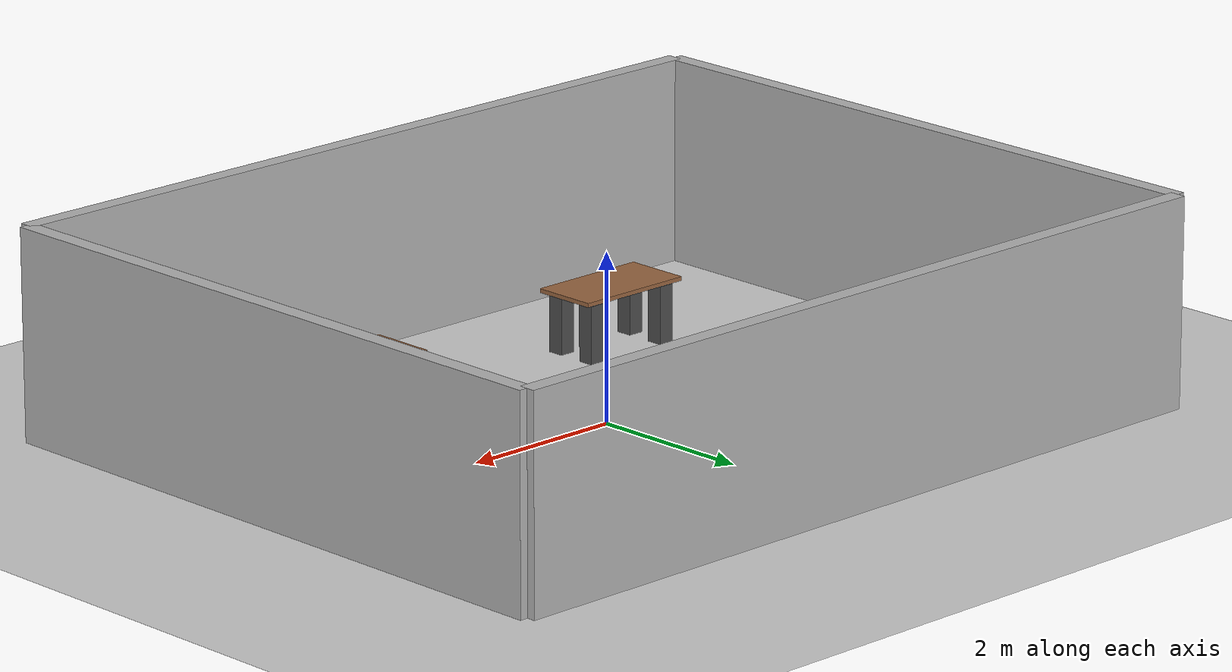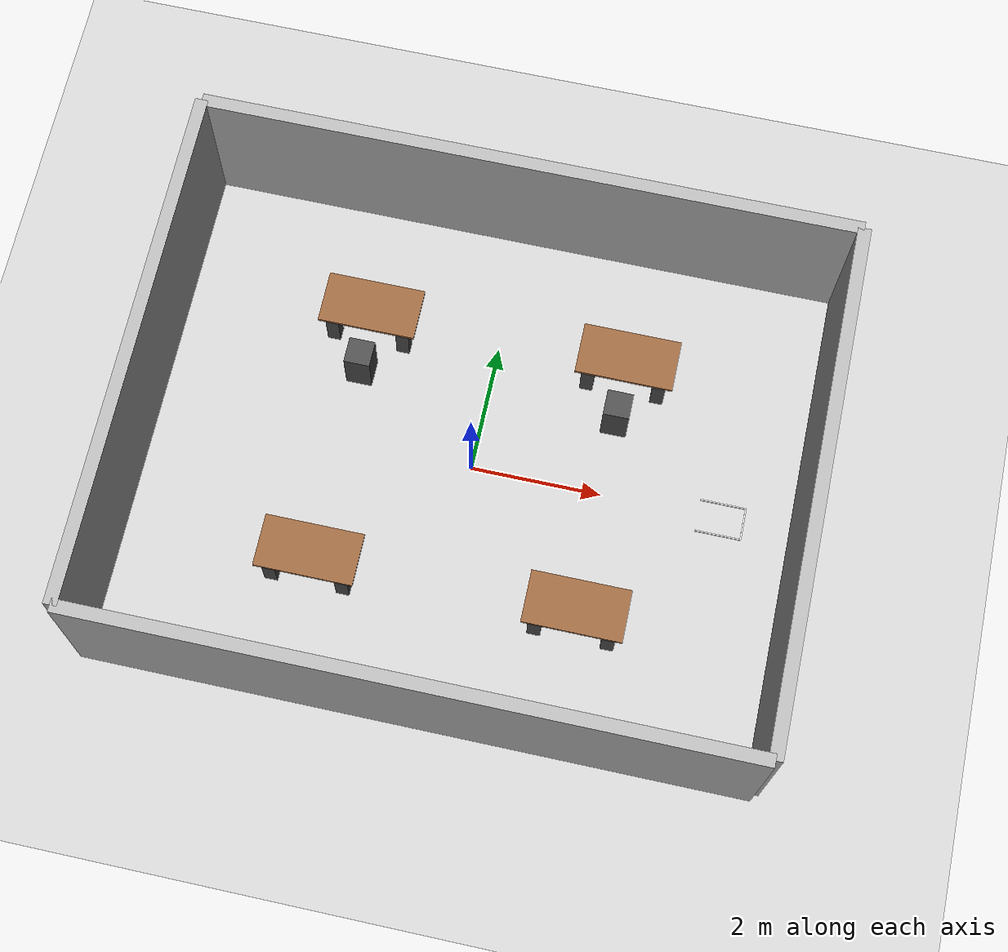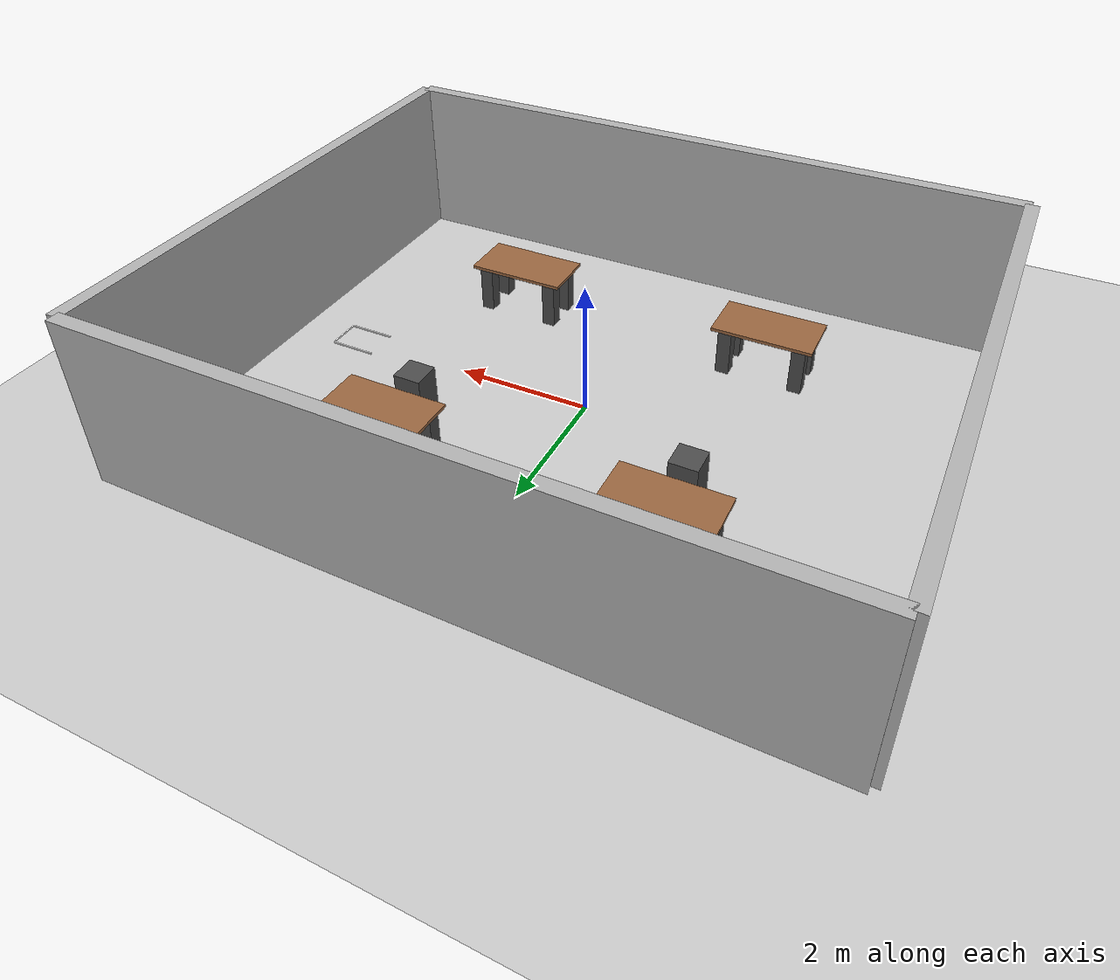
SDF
<?xml version="1.0" ?>
<sdf version="1.9">
  <world name="computer_lab">

    <!-- ================= SCENE ================= -->
    <scene>
      <ambient>0.6 0.6 0.6 1</ambient>
      <background>0.95 0.95 0.95 1</background>
    </scene>

    <!-- ================= LIGHTS ================= -->

    <!-- Sun -->
    <light name="sun" type="directional">
      <pose>0 0 10 0 0 0</pose>
      <direction>-0.5 0.1 -1</direction>
      <diffuse>0.8 0.8 0.8 1</diffuse>
      <specular>0.2 0.2 0.2 1</specular>
    </light>

    <!-- Indoor ceiling light -->
    <light name="room_light" type="point">
      <pose>0 0 6 0 0 0</pose>
      <diffuse>1 1 1 1</diffuse>
      <specular>0.2 0.2 0.2 1</specular>
      <attenuation>
        <range>20</range>
        <constant>0.9</constant>
        <linear>0.01</linear>
      </attenuation>
    </light>

    <!-- ================= GROUND ================= -->

    <model name="ground_plane">
      <static>true</static>
      <link name="link">
        <collision name="collision">
          <geometry>
            <plane>
              <normal>0 0 1</normal>
              <size>50 50</size>
            </plane>
          </geometry>
        </collision>
        <visual name="visual">
          <geometry>
            <plane>
              <normal>0 0 1</normal>
              <size>50 50</size>
            </plane>
          </geometry>
          <material>
            <ambient>0.8 0.8 0.8 1</ambient>
            <diffuse>0.8 0.8 0.8 1</diffuse>
            <specular>0.1 0.1 0.1 1</specular>
          </material>
        </visual>
      </link>
    </model>

    <!-- ================= WALLS ================= -->

    <!-- Front -->
    <model name="wall_front">
      <static>true</static>
      <pose>0 4 1.25 0 0 0</pose>
      <link name="link">
        <collision name="collision">
          <geometry><box><size>10 0.2 2.5</size></box></geometry>
        </collision>
        <visual name="visual">
          <geometry><box><size>10 0.2 2.5</size></box></geometry>
          <material><diffuse>0.7 0.7 0.7 1</diffuse></material>
        </visual>
      </link>
    </model>

    <!-- Back -->
    <model name="wall_back">
      <static>true</static>
      <pose>0 -4 1.25 0 0 0</pose>
      <link name="link">
        <collision name="collision">
          <geometry><box><size>10 0.2 2.5</size></box></geometry>
        </collision>
        <visual name="visual">
          <geometry><box><size>10 0.2 2.5</size></box></geometry>
          <material><diffuse>0.7 0.7 0.7 1</diffuse></material>
        </visual>
      </link>
    </model>

    <!-- Left -->
    <model name="wall_left">
      <static>true</static>
      <pose>-5 0 1.25 0 0 0</pose>
      <link name="link">
        <collision name="collision">
          <geometry><box><size>0.2 8 2.5</size></box></geometry>
        </collision>
        <visual name="visual">
          <geometry><box><size>0.2 8 2.5</size></box></geometry>
          <material><diffuse>0.7 0.7 0.7 1</diffuse></material>
        </visual>
      </link>
    </model>

    <!-- Right -->
    <model name="wall_right">
      <static>true</static>
      <pose>5 0 1.25 0 0 0</pose>
      <link name="link">
        <collision name="collision">
          <geometry><box><size>0.2 8 2.5</size></box></geometry>
        </collision>
        <visual name="visual">
          <geometry><box><size>0.2 8 2.5</size></box></geometry>
          <material><diffuse>0.7 0.7 0.7 1</diffuse></material>
        </visual>
      </link>
    </model>

    <!-- ================= TABLES ================= -->

    <model name="table_1">
      <static>true</static>
      <pose>-2 2 0 0 0 0</pose>

      <link name="link">

        <!-- ================= TABLE TOP ================= -->
        <collision name="top_collision">
          <!-- Top thickness = 0.05 m, height = 0.75 m -->
          <pose>0 0 0.75 0 0 0</pose>
          <geometry>
            <box><size>1.5 0.8 0.05</size></box>
          </geometry>
        </collision>

        <visual name="top_visual">
          <pose>0 0 0.75 0 0 0</pose>
          <geometry>
            <box><size>1.5 0.8 0.05</size></box>
          </geometry>
          <material>
            <diffuse>0.6 0.4 0.25 1</diffuse>
          </material>
        </visual>

        <!-- ================= TABLE LEGS ================= -->
        <!-- Leg height: 0.7 m (touches ground) -->
        <!-- Leg thickness: 5 cm -->

        <!-- Front-left -->
        <collision name="leg_fl_col">
          <pose>0.55 0.25 0.35 0 0 0</pose>
          <geometry>
            <box><size>0.20 0.20 0.7</size></box>
          </geometry>
        </collision>
        <visual name="leg_fl_vis">
          <pose>0.55 0.25 0.35 0 0 0</pose>
          <geometry>
            <box><size>0.20 0.20 0.7</size></box>
          </geometry>
          <material>
            <diffuse>0.3 0.3 0.3 1</diffuse>
          </material>
        </visual>

        <!-- Front-right -->
        <collision name="leg_fr_col">
          <pose>0.55 -0.25 0.35 0 0 0</pose>
          <geometry>
            <box><size>0.20 0.20 0.7</size></box>
          </geometry>
        </collision>
        <visual name="leg_fr_vis">
          <pose>0.55 -0.25 0.35 0 0 0</pose>
          <geometry>
            <box><size>0.20 0.20 0.7</size></box>
          </geometry>
          <material>
            <diffuse>0.3 0.3 0.3 1</diffuse>
          </material>
        </visual>

        <!-- Back-left -->
        <collision name="leg_bl_col">
          <pose>-0.55 0.25 0.35 0 0 0</pose>
          <geometry>
            <box><size>0.20 0.20 0.7</size></box>
          </geometry>
        </collision>
        <visual name="leg_bl_vis">
          <pose>-0.55 0.25 0.35 0 0 0</pose>
          <geometry>
            <box><size>0.20 0.20 0.7</size></box>
          </geometry>
          <material>
            <diffuse>0.3 0.3 0.3 1</diffuse>
          </material>
        </visual>

        <!-- Back-right -->
        <collision name="leg_br_col">
          <pose>-0.55 -0.25 0.35 0 0 0</pose>
          <geometry>
            <box><size>0.20 0.20 0.7</size></box>
          </geometry>
        </collision>
        <visual name="leg_br_vis">
          <pose>-0.55 -0.25 0.35 0 0 0</pose>
          <geometry>
            <box><size>0.20 0.20 0.7</size></box>
          </geometry>
          <material>
            <diffuse>0.3 0.3 0.3 1</diffuse>
          </material>
        </visual>

      </link>
    </model>

        <!-- ================= TABLES ================= -->

    <model name="table_2">
      <static>true</static>
      <pose>2 2 0 0 0 0</pose>

      <link name="link">

        <!-- ================= TABLE TOP ================= -->
        <collision name="top_collision">
          <!-- Top thickness = 0.05 m, height = 0.75 m -->
          <pose>0 0 0.75 0 0 0</pose>
          <geometry>
            <box><size>1.5 0.8 0.05</size></box>
          </geometry>
        </collision>

        <visual name="top_visual">
          <pose>0 0 0.75 0 0 0</pose>
          <geometry>
            <box><size>1.5 0.8 0.05</size></box>
          </geometry>
          <material>
            <diffuse>0.6 0.4 0.25 1</diffuse>
          </material>
        </visual>

        <!-- ================= TABLE LEGS ================= -->
        <!-- Leg height: 0.7 m (touches ground) -->
        <!-- Leg thickness: 5 cm -->

        <!-- Front-left -->
        <collision name="leg_fl_col">
          <pose>0.55 0.25 0.35 0 0 0</pose>
          <geometry>
            <box><size>0.20 0.20 0.7</size></box>
          </geometry>
        </collision>
        <visual name="leg_fl_vis">
          <pose>0.55 0.25 0.35 0 0 0</pose>
          <geometry>
            <box><size>0.20 0.20 0.7</size></box>
          </geometry>
          <material>
            <diffuse>0.3 0.3 0.3 1</diffuse>
          </material>
        </visual>

        <!-- Front-right -->
        <collision name="leg_fr_col">
          <pose>0.55 -0.25 0.35 0 0 0</pose>
          <geometry>
            <box><size>0.20 0.20 0.7</size></box>
          </geometry>
        </collision>
        <visual name="leg_fr_vis">
          <pose>0.55 -0.25 0.35 0 0 0</pose>
          <geometry>
            <box><size>0.20 0.20 0.7</size></box>
          </geometry>
          <material>
            <diffuse>0.3 0.3 0.3 1</diffuse>
          </material>
        </visual>

        <!-- Back-left -->
        <collision name="leg_bl_col">
          <pose>-0.55 0.25 0.35 0 0 0</pose>
          <geometry>
            <box><size>0.20 0.20 0.7</size></box>
          </geometry>
        </collision>
        <visual name="leg_bl_vis">
          <pose>-0.55 0.25 0.35 0 0 0</pose>
          <geometry>
            <box><size>0.20 0.20 0.7</size></box>
          </geometry>
          <material>
            <diffuse>0.3 0.3 0.3 1</diffuse>
          </material>
        </visual>

        <!-- Back-right -->
        <collision name="leg_br_col">
          <pose>-0.55 -0.25 0.35 0 0 0</pose>
          <geometry>
            <box><size>0.20 0.20 0.7</size></box>
          </geometry>
        </collision>
        <visual name="leg_br_vis">
          <pose>-0.55 -0.25 0.35 0 0 0</pose>
          <geometry>
            <box><size>0.20 0.20 0.7</size></box>
          </geometry>
          <material>
            <diffuse>0.3 0.3 0.3 1</diffuse>
          </material>
        </visual>

      </link>
    </model>

        <!-- ================= TABLES ================= -->

    <model name="table_3">
      <static>true</static>
      <pose>-2 -2 0 0 0 0</pose>

      <link name="link">

        <!-- ================= TABLE TOP ================= -->
        <collision name="top_collision">
          <!-- Top thickness = 0.05 m, height = 0.75 m -->
          <pose>0 0 0.75 0 0 0</pose>
          <geometry>
            <box><size>1.5 0.8 0.05</size></box>
          </geometry>
        </collision>

        <visual name="top_visual">
          <pose>0 0 0.75 0 0 0</pose>
          <geometry>
            <box><size>1.5 0.8 0.05</size></box>
          </geometry>
          <material>
            <diffuse>0.6 0.4 0.25 1</diffuse>
          </material>
        </visual>

        <!-- ================= TABLE LEGS ================= -->
        <!-- Leg height: 0.7 m (touches ground) -->
        <!-- Leg thickness: 5 cm -->

        <!-- Front-left -->
        <collision name="leg_fl_col">
          <pose>0.55 0.25 0.35 0 0 0</pose>
          <geometry>
            <box><size>0.20 0.20 0.7</size></box>
          </geometry>
        </collision>
        <visual name="leg_fl_vis">
          <pose>0.55 0.25 0.35 0 0 0</pose>
          <geometry>
            <box><size>0.20 0.20 0.7</size></box>
          </geometry>
          <material>
            <diffuse>0.3 0.3 0.3 1</diffuse>
          </material>
        </visual>

        <!-- Front-right -->
        <collision name="leg_fr_col">
          <pose>0.55 -0.25 0.35 0 0 0</pose>
          <geometry>
            <box><size>0.20 0.20 0.7</size></box>
          </geometry>
        </collision>
        <visual name="leg_fr_vis">
          <pose>0.55 -0.25 0.35 0 0 0</pose>
          <geometry>
            <box><size>0.20 0.20 0.7</size></box>
          </geometry>
          <material>
            <diffuse>0.3 0.3 0.3 1</diffuse>
          </material>
        </visual>

        <!-- Back-left -->
        <collision name="leg_bl_col">
          <pose>-0.55 0.25 0.35 0 0 0</pose>
          <geometry>
            <box><size>0.20 0.20 0.7</size></box>
          </geometry>
        </collision>
        <visual name="leg_bl_vis">
          <pose>-0.55 0.25 0.35 0 0 0</pose>
          <geometry>
            <box><size>0.20 0.20 0.7</size></box>
          </geometry>
          <material>
            <diffuse>0.3 0.3 0.3 1</diffuse>
          </material>
        </visual>

        <!-- Back-right -->
        <collision name="leg_br_col">
          <pose>-0.55 -0.25 0.35 0 0 0</pose>
          <geometry>
            <box><size>0.20 0.20 0.7</size></box>
          </geometry>
        </collision>
        <visual name="leg_br_vis">
          <pose>-0.55 -0.25 0.35 0 0 0</pose>
          <geometry>
            <box><size>0.20 0.20 0.7</size></box>
          </geometry>
          <material>
            <diffuse>0.3 0.3 0.3 1</diffuse>
          </material>
        </visual>

      </link>
    </model>

        <!-- ================= TABLES ================= -->

    <model name="table_4">
      <static>true</static>
      <pose>2 -2 0 0 0 0</pose>

      <link name="link">

        <!-- ================= TABLE TOP ================= -->
        <collision name="top_collision">
          <!-- Top thickness = 0.05 m, height = 0.75 m -->
          <pose>0 0 0.75 0 0 0</pose>
          <geometry>
            <box><size>1.5 0.8 0.05</size></box>
          </geometry>
        </collision>

        <visual name="top_visual">
          <pose>0 0 0.75 0 0 0</pose>
          <geometry>
            <box><size>1.5 0.8 0.05</size></box>
          </geometry>
          <material>
            <diffuse>0.6 0.4 0.25 1</diffuse>
          </material>
        </visual>

        <!-- ================= TABLE LEGS ================= -->
        <!-- Leg height: 0.7 m (touches ground) -->
        <!-- Leg thickness: 5 cm -->

        <!-- Front-left -->
        <collision name="leg_fl_col">
          <pose>0.55 0.25 0.35 0 0 0</pose>
          <geometry>
            <box><size>0.20 0.20 0.7</size></box>
          </geometry>
        </collision>
        <visual name="leg_fl_vis">
          <pose>0.55 0.25 0.35 0 0 0</pose>
          <geometry>
            <box><size>0.20 0.20 0.7</size></box>
          </geometry>
          <material>
            <diffuse>0.3 0.3 0.3 1</diffuse>
          </material>
        </visual>

        <!-- Front-right -->
        <collision name="leg_fr_col">
          <pose>0.55 -0.25 0.35 0 0 0</pose>
          <geometry>
            <box><size>0.20 0.20 0.7</size></box>
          </geometry>
        </collision>
        <visual name="leg_fr_vis">
          <pose>0.55 -0.25 0.35 0 0 0</pose>
          <geometry>
            <box><size>0.20 0.20 0.7</size></box>
          </geometry>
          <material>
            <diffuse>0.3 0.3 0.3 1</diffuse>
          </material>
        </visual>

        <!-- Back-left -->
        <collision name="leg_bl_col">
          <pose>-0.55 0.25 0.35 0 0 0</pose>
          <geometry>
            <box><size>0.20 0.20 0.7</size></box>
          </geometry>
        </collision>
        <visual name="leg_bl_vis">
          <pose>-0.55 0.25 0.35 0 0 0</pose>
          <geometry>
            <box><size>0.20 0.20 0.7</size></box>
          </geometry>
          <material>
            <diffuse>0.3 0.3 0.3 1</diffuse>
          </material>
        </visual>

        <!-- Back-right -->
        <collision name="leg_br_col">
          <pose>-0.55 -0.25 0.35 0 0 0</pose>
          <geometry>
            <box><size>0.20 0.20 0.7</size></box>
          </geometry>
        </collision>
        <visual name="leg_br_vis">
          <pose>-0.55 -0.25 0.35 0 0 0</pose>
          <geometry>
            <box><size>0.20 0.20 0.7</size></box>
          </geometry>
          <material>
            <diffuse>0.3 0.3 0.3 1</diffuse>
          </material>
        </visual>

      </link>
    </model>

    <!-- ================= CHAIRS ================= -->

    <model name="chair_1">
      <static>true</static>
      <pose>-2 1.2 0.4 0 0 0</pose>
      <link name="link">
        <collision name="collision">
          <geometry><box><size>0.4 0.4 0.8</size></box></geometry>
        </collision>
        <visual name="visual">
          <geometry><box><size>0.4 0.4 0.8</size></box></geometry>
          <material><diffuse>0.3 0.3 0.3 1</diffuse></material>
        </visual>
      </link>
    </model>

    <model name="chair_2">
      <static>true</static>
      <pose>2 1.2 0.4 0 0 0</pose>
      <link name="link">
        <collision name="collision">
          <geometry><box><size>0.4 0.4 0.8</size></box></geometry>
        </collision>
        <visual name="visual">
          <geometry><box><size>0.4 0.4 0.8</size></box></geometry>
          <material><diffuse>0.3 0.3 0.3 1</diffuse></material>
        </visual>
      </link>
    </model>

    <!-- ================= PARKING MARKINGS ================= -->

    <model name="parking_markings">
      <static>true</static>
      <pose>4.2 0 0 0 0 1.57</pose>
      <link name="link">

        <visual name="left">
          <pose>-0.25 0.35 0.01 0 0 0</pose>
          <geometry><box><size>0.02 0.7 0.02</size></box></geometry>
          <material><diffuse>1 1 1 1</diffuse></material>
        </visual>

        <visual name="right">
          <pose>0.25 0.35 0.01 0 0 0</pose>
          <geometry><box><size>0.02 0.7 0.02</size></box></geometry>
          <material><diffuse>1 1 1 1</diffuse></material>
        </visual>

        <visual name="front">
          <pose>0 0 0.01 0 0 0</pose>
          <geometry><box><size>0.5 0.02 0.02</size></box></geometry>
          <material><diffuse>1 1 1 1</diffuse></material>
        </visual>

      </link>
    </model>

  </world>
</sdf>
